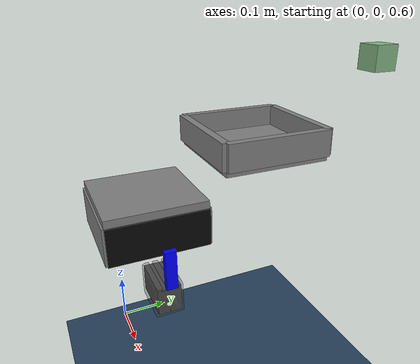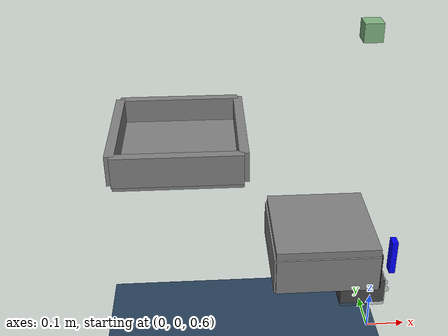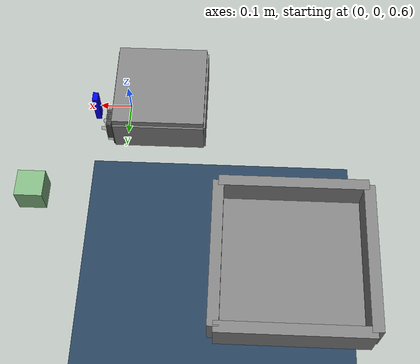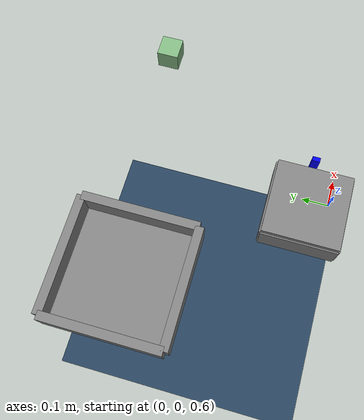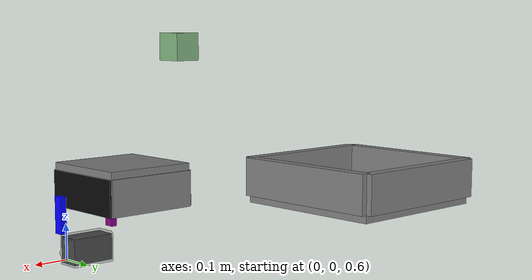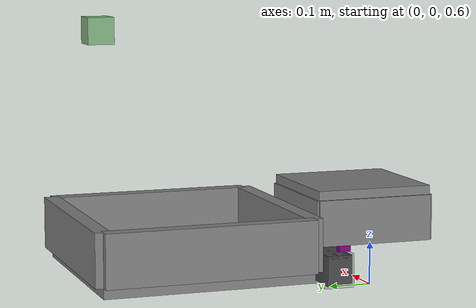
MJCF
<mujoco model="single ur5e scene simple env">
  <statistic center="0 1.3 1.9" extent="0.8" meansize=".05"/>
  <size memory="1G"/>
  <option noslip_iterations="10" timestep="0.001" integrator="implicitfast"/>
  <visual>
    <headlight diffuse="0.6 0.6 0.6" ambient="0.1 0.1 0.1" specular="0 0 0"/>
    <rgba haze="0.15 0.25 0.35 1"/>
    <global azimuth="270" elevation="-45"/>
    <map stiffness="700" shadowscale="0.5" fogstart="1" fogend="15" zfar="40" haze="1" shadowclip="3"/>
  </visual>

  <asset>
    <texture type="skybox" builtin="gradient" rgb1="0.3 0.5 0.7" rgb2="0 0 0" width="512" height="3072"/>
    <texture type="2d" name="groundplane" builtin="checker" mark="edge" rgb1="0.2 0.3 0.4" rgb2="0.1 0.2 0.3"
      markrgb="0.8 0.8 0.8" width="300" height="300"/>
    <material name="groundplane" texture="groundplane" texuniform="true" texrepeat="5 5" reflectance="0.2"/>
  </asset>

  <worldbody>
    <light diffuse=".5 .5 .5" pos="0 0 3" dir="0 0 -1"/>
    <light pos="0 0 1.5" dir="0 0 -1" directional="true"/>
    <geom name="floor" size="0 0 0.05" type="plane" material="groundplane"/>
  </worldbody>

  <include file="schunk_tool_pour.xml"/>
  <include file="objs4pour.xml"/>
</mujoco>

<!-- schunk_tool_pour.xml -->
<mujoco model="ur5e schunk">
  <compiler angle="radian" meshdir="assets" autolimits="true"/>

  <default>
    <default class="ur5eL">
      <material specular="0.5" shininess="0.25"/>
      <joint axis="0 1 0" range="-6.28319 6.28319" armature="0.1"/>
      <general gaintype="fixed" biastype="affine" ctrlrange="-6.2831 6.2831" gainprm="2000" biasprm="0 -2000 -400"
        forcerange="-150 150"/>
      <default class="size3L">
        <joint armature="0.1" damping="200" />
        <position kp="10000" forcerange="-150 150" ctrllimited="true" />
        <default class="size3_limitedL">
          <joint range="-3.1415 3.1415"/>
          <position kp="10000" ctrlrange="-3.14 3.14" ctrllimited="true" />
        </default>
      </default>
      <default class="finger">
        <joint axis="-1 0 0" type="slide" range="0 0.07"/>
        <general dyntype="none" biastype="affine" ctrlrange="0 0.07" forcerange="-150 150"/>
      </default>
      <default class="size1L">
        <joint armature="0.1" damping="50" />
        <position kp="9000" forcerange="-28 28" />
      </default>
      <default class="visualL">
        <geom type="mesh" contype="0" conaffinity="0" group="2"/>
      </default>
      <default class="collisionL">
        <geom type="capsule" group="3"/>
        <default class="eef_collisionL">
          <geom type="cylinder"/>
        </default>
      </default>
      <site size="0.001" rgba="0.5 0.5 0.5 0.3" group="4"/>
    </default>
    <default class="ycb_viz">
	  <geom contype="0" conaffinity="0" type="mesh" mass="0"/>
    </default>
    <default class="ycb_col">
	  <geom contype="1" conaffinity="1" group="3" rgba=".4 .5 .6 1"/>
    </default>
  </default>

  <asset>
    <material class="ur5eL" name="blackL" rgba="0.033 0.033 0.033 1"/>
    <material class="ur5eL" name="jointgrayL" rgba="0.278 0.278 0.278 1"/>
    <material class="ur5eL" name="linkgrayL" rgba="0.82 0.82 0.82 1"/>
    <material class="ur5eL" name="urblueL" rgba="0.49 0.678 0.8 1"/>

    <mesh name="base_0L" file="base_0.obj"/>
    <mesh name="base_1L" file="base_1.obj"/>
    <mesh name="shoulder_0L" file="shoulder_0.obj"/>
    <mesh name="shoulder_1L" file="shoulder_1.obj"/>
    <mesh name="shoulder_2L" file="shoulder_2.obj"/>
    <mesh name="upperarm_0L" file="upperarm_0.obj"/>
    <mesh name="upperarm_1L" file="upperarm_1.obj"/>
    <mesh name="upperarm_2L" file="upperarm_2.obj"/>
    <mesh name="upperarm_3L" file="upperarm_3.obj"/>
    <mesh name="forearm_0L" file="forearm_0.obj"/>
    <mesh name="forearm_1L" file="forearm_1.obj"/>
    <mesh name="forearm_2L" file="forearm_2.obj"/>
    <mesh name="forearm_3L" file="forearm_3.obj"/>
    <mesh name="wrist1_0L" file="wrist1_0.obj"/>
    <mesh name="wrist1_1L" file="wrist1_1.obj"/>
    <mesh name="wrist1_2L" file="wrist1_2.obj"/>
    <mesh name="wrist2_0L" file="wrist2_0.obj"/>
    <mesh name="wrist2_1L" file="wrist2_1.obj"/>
    <mesh name="wrist2_2L" file="wrist2_2.obj"/>
    <mesh name="wrist3L" file="wrist3.obj"/>
    <mesh name="schunkbaseL" file="schunkbase.obj"/>

    <mesh name="006_mustard_bottle" file="assets/meshes/006_mustard_bottle.msh" scale="1 1 1"/>
    <texture name="006_mustard_bottle" type="2d" file="assets/textures/006_mustard_bottle.png"/>
    <material name="006_mustard_bottle" texture="006_mustard_bottle"/>

  </asset>

  <worldbody>
    <body mocap='true' name="LEEF" pos="0 0.1 0.75" quat="1 0 0 0">
<!--      for the chain robot ee quat is (1 -1 0 0), so if you need transfer to real robot, adapt it-->
<!--      rotation order: x>y>z -->
      <site name="EEFee_pos" pos="0 0 0" quat="1 0 0 0"/>
      <inertial mass="0.1889" pos="0 0.0771683 0" quat="1 0 0 1"
        diaginertia="0.000132134 9.90863e-05 9.90863e-05"/>
      <geom material="linkgrayL" mesh="schunkbaseL" pos="0 0 -0.14"  quat="1 1 0 0" class="visualL" rgba="0.3 0.3 0.3 0.3"/>
      <geom type="box" size="0.06 0.035 0.03" pos="0 0 -0.1" quat="1 1 0 0" rgba="0.3 0.3 0.3 1" friction="1"/>
      <body name="finger1" pos="0.08 0 0">
        <inertial mass="0.015" pos="0 0 0" diaginertia="2.375e-6 2.375e-6 7.5e-7"/>
        <joint name="finger_joint1" class="finger"/>
        <geom type="box"  size="0.008 0.05 0.014" quat="1 1 0 0" rgba="0 0 1 1" friction="1"/>
      </body>
      <body name="finger2" pos="-0.08 0 0">
        <inertial mass="0.015" pos="0 0 0" diaginertia="2.375e-6 2.375e-6 7.5e-7"/>
        <joint name="finger_joint2" class="finger" axis="1 0 0"/>
        <geom type="box" size="0.008 0.05 0.014" quat="1 1 0 0" rgba="0.5 0 0.5 1" friction="1 1 1"/>
      </body>
      <body name="bowl" pos="-0.12 0 0.1" quat="0 -1 0 0">
        <inertial pos="0 0 0" mass="1.0" diaginertia="0.0102675 0.0102675 0.00666"/>
        <site name="bowlside" pos="0.12 0 0.05" rgba="1 0 0 0.3" size="0.01"/>
        <geom type="box" size="0.13 0.13 0.02" friction="1 1 1"/>
        <geom type="box" size="0.015 0.13 0.05" pos="0.12 0 0.05" rgba="0.033 0.033 0.033 1" friction="1 1 1"/>
        <geom type="box" size="0.015 0.13 0.05" pos="-0.12 0 0.05" friction="1 1 1"/>
        <geom type="box" size="0.13 0.015 0.05" pos="0 -0.12 0.05" friction="1 1 1"/>
        <geom type="box" size="0.13 0.015 0.05" pos="0 0.12 0.05" friction="1 1 1"/>
      </body>
    </body>

<!--&lt;!&ndash;      rotation order: x>y>z &ndash;&gt;-->
<!--&lt;!&ndash;      0.6963642 -0.664463 0.2418448 0.1227878  -90 10 30&ndash;&gt;-->
<!--&lt;!&ndash;      0.704416 -0.704416 0.0616284 -0.0616284 -90 10 0&ndash;&gt;-->

  </worldbody>

  <equality>
    <joint joint1="finger_joint1" joint2="finger_joint2" solimp="0.99 0.99 0.001" solref="0.005 1"/>
  </equality>

  <actuator>
    <position class="finger" name="fingers" joint="finger_joint1"/>
  </actuator>

</mujoco>

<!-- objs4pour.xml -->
<mujoco model="Objs">
  <worldbody>
  <!--Grasped Object-->
      <body mocap='true' name="pourcube" pos="0.1 0.62 1.2">
          <body name="rigid_cube">
              <joint armature="0" axis="1 0 0" damping="0" limited="true" name="box_1_x" pos="0 0 0" range="-5. 5." stiffness="0" type="slide"/>
              <joint armature="0" axis="0 1 0" damping="0" limited="true" name="box_1_y" pos="0 0 0" range="-5. 5." stiffness="0" type="slide"/>
              <joint armature="0" axis="0 0 1" damping="0" limited="true" name="box_1_z" pos="0 0 0" range="-2. 2." stiffness="0" type="slide"/>
              <joint armature="0" damping="0" name="box_1_rot" pos="0 0 0" stiffness="0" type="ball"/>
              <geom type="box" size="0.03 0.03 0.03" rgba=".5 .7 .5 1" friction="1 1 1"/>
          </body>
      </body>
       <!--fix area-->
      <body mocap='true' name="grab_obj" pos="-0.5 0.62 0.8">
          <geom type="box" size="0.2 0.2 0.02" friction="1 1 1"/>
          <geom type="box" size="0.015 0.2 0.05" pos="0.2 0 0.05" friction="1 1 1"/>
          <geom type="box" size="0.015 0.2 0.05" pos="-0.2 0 0.05" friction="1 1 1"/>
          <geom type="box" size="0.2 0.015 0.05" pos="0 -0.2 0.05" friction="1 1 1"/>
          <geom type="box" size="0.2 0.015 0.05" pos="0 0.2 0.05" friction="1 1 1"/>
      </body>
  </worldbody>

</mujoco>
